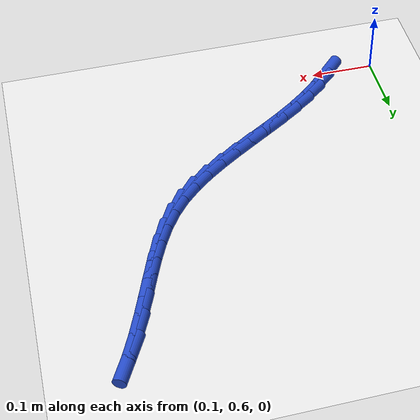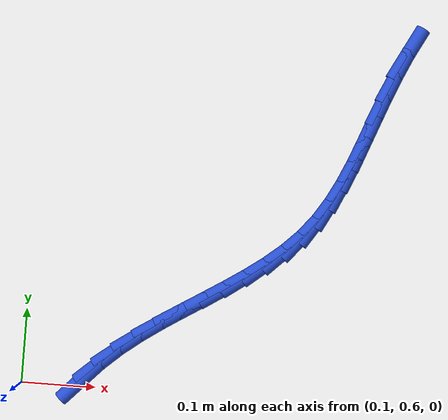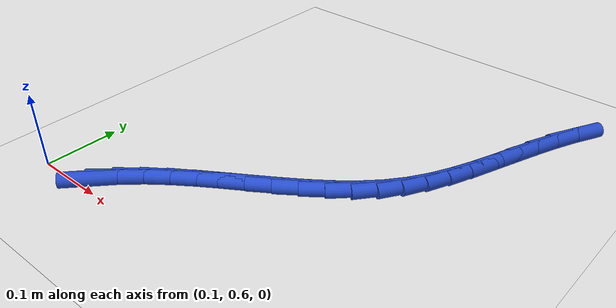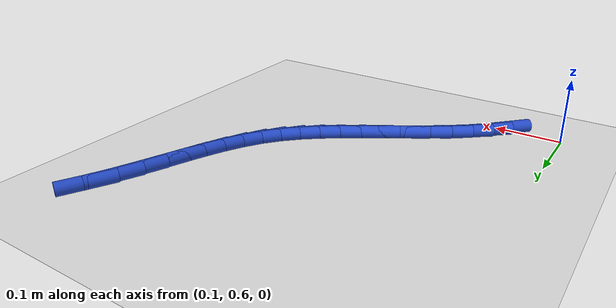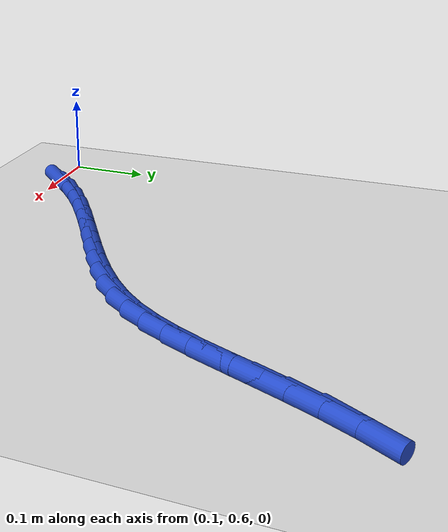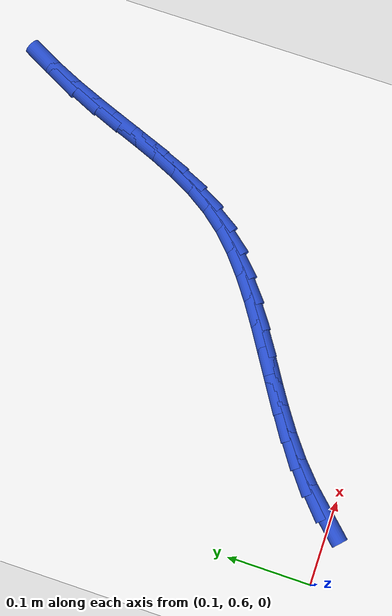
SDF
<sdf version="1.6">
 <world name="default">
  <model name="ground_plane">
   <static>1</static>
   <link name="link">
    <collision name="collision">
     <geometry><plane><normal>0 0 1</normal><size>100 100</size></plane></geometry>
     <surface><friction><ode><mu>100</mu><mu2>50</mu2></ode></friction></surface>
    </collision>
    <visual name="visual">
     <cast_shadows>0</cast_shadows>
     <geometry><plane><normal>0 0 1</normal><size>100 100</size></plane></geometry>
     <material>
      <script><uri>file://media/materials/scripts/gazebo.material</uri><name>Gazebo/WhiteGlow</name></script>
     </material>
    </visual>
   </link>
  </model>
  <model name="line">
   <link name="link_20">
    <pose>0.18259330747721997 0.6118370886927432 0.01 0 1.57 0.8105098833051363</pose>
    <collision name="collision">
     <geometry><cylinder><radius>0.01</radius><length>0.08</length></cylinder></geometry>
    </collision>
    <visual name="visual">
     <material>
      <script><name>Gazebo/Blue</name><uri>file://media/materials/scripts/gazebo.material</uri></script>
     </material>
     <geometry><cylinder><radius>0.01</radius><length>0.08</length></cylinder></geometry>
    </visual>
   </link>
   <link name="link_21">
    <pose>0.20458417969015824 0.6349611117162631 0.01 0 1.57 0.7293195431601147</pose>
    <collision name="collision">
     <geometry><cylinder><radius>0.01</radius><length>0.08</length></cylinder></geometry>
    </collision>
    <visual name="visual">
     <material>
      <script><name>Gazebo/Blue</name><uri>file://media/materials/scripts/gazebo.material</uri></script>
     </material>
     <geometry><cylinder><radius>0.01</radius><length>0.08</length></cylinder></geometry>
    </visual>
   </link>
   <link name="link_22">
    <pose>0.22858693797046195 0.6564122053034579 0.01 0 1.57 0.6570275330989166</pose>
    <collision name="collision">
     <geometry><cylinder><radius>0.01</radius><length>0.08</length></cylinder></geometry>
    </collision>
    <visual name="visual">
     <material>
      <script><name>Gazebo/Blue</name><uri>file://media/materials/scripts/gazebo.material</uri></script>
     </material>
     <geometry><cylinder><radius>0.01</radius><length>0.08</length></cylinder></geometry>
    </visual>
   </link>
   <link name="link_23">
    <pose>0.25439272228096554 0.6763175734729767 0.01 0 1.57 0.6047576606259017</pose>
    <collision name="collision">
     <geometry><cylinder><radius>0.01</radius><length>0.08</length></cylinder></geometry>
    </collision>
    <visual name="visual">
     <material>
      <script><name>Gazebo/Blue</name><uri>file://media/materials/scripts/gazebo.material</uri></script>
     </material>
     <geometry><cylinder><radius>0.01</radius><length>0.08</length></cylinder></geometry>
    </visual>
   </link>
   <link name="link_24">
    <pose>0.2814932727280292 0.6950479595753469 0.01 0 1.57 0.571743557279908</pose>
    <collision name="collision">
     <geometry><cylinder><radius>0.01</radius><length>0.08</length></cylinder></geometry>
    </collision>
    <visual name="visual">
     <material>
      <script><name>Gazebo/Blue</name><uri>file://media/materials/scripts/gazebo.material</uri></script>
     </material>
     <geometry><cylinder><radius>0.01</radius><length>0.08</length></cylinder></geometry>
    </visual>
   </link>
   <link name="link_25">
    <pose>0.3093684856769598 0.7129837409563066 0.01 0 1.57 0.5570754616753605</pose>
    <collision name="collision">
     <geometry><cylinder><radius>0.01</radius><length>0.08</length></cylinder></geometry>
    </collision>
    <visual name="visual">
     <material>
      <script><name>Gazebo/Blue</name><uri>file://media/materials/scripts/gazebo.material</uri></script>
     </material>
     <geometry><cylinder><radius>0.01</radius><length>0.08</length></cylinder></geometry>
    </visual>
   </link>
   <link name="link_26">
    <pose>0.3374982574930642 0.7305052949615926 0.01 0 1.57 0.5604697568227484</pose>
    <collision name="collision">
     <geometry><cylinder><radius>0.01</radius><length>0.08</length></cylinder></geometry>
    </collision>
    <visual name="visual">
     <material>
      <script><name>Gazebo/Blue</name><uri>file://media/materials/scripts/gazebo.material</uri></script>
     </material>
     <geometry><cylinder><radius>0.01</radius><length>0.08</length></cylinder></geometry>
    </visual>
   </link>
   <link name="link_27">
    <pose>0.3653624845416492 0.747992998936943 0.01 0 1.57 0.5824043736246806</pose>
    <collision name="collision">
     <geometry><cylinder><radius>0.01</radius><length>0.08</length></cylinder></geometry>
    </collision>
    <visual name="visual">
     <material>
      <script><name>Gazebo/Blue</name><uri>file://media/materials/scripts/gazebo.material</uri></script>
     </material>
     <geometry><cylinder><radius>0.01</radius><length>0.08</length></cylinder></geometry>
    </visual>
   </link>
   <link name="link_28">
    <pose>0.39244106318802163 0.7658272302280953 0.01 0 1.57 0.6241431647004706</pose>
    <collision name="collision">
     <geometry><cylinder><radius>0.01</radius><length>0.08</length></cylinder></geometry>
    </collision>
    <visual name="visual">
     <material>
      <script><name>Gazebo/Blue</name><uri>file://media/materials/scripts/gazebo.material</uri></script>
     </material>
     <geometry><cylinder><radius>0.01</radius><length>0.08</length></cylinder></geometry>
    </visual>
   </link>
   <link name="link_29">
    <pose>0.41821388979748836 0.784388366180787 0.01 0 1.57 0.6876137003023063</pose>
    <collision name="collision">
     <geometry><cylinder><radius>0.01</radius><length>0.08</length></cylinder></geometry>
    </collision>
    <visual name="visual">
     <material>
      <script><name>Gazebo/Blue</name><uri>file://media/materials/scripts/gazebo.material</uri></script>
     </material>
     <geometry><cylinder><radius>0.01</radius><length>0.08</length></cylinder></geometry>
    </visual>
   </link>
   <link name="link_30">
    <pose>0.4421608607353561 0.8040567841407555 0.01 0 1.57 0.7749924442419578</pose>
    <collision name="collision">
     <geometry><cylinder><radius>0.01</radius><length>0.08</length></cylinder></geometry>
    </collision>
    <visual name="visual">
     <material>
      <script><name>Gazebo/Blue</name><uri>file://media/materials/scripts/gazebo.material</uri></script>
     </material>
     <geometry><cylinder><radius>0.01</radius><length>0.08</length></cylinder></geometry>
    </visual>
   </link>
   <link name="link_31">
    <pose>0.4637618723669319 0.825212861453739 0.01 0 1.57 0.8862611791400495</pose>
    <collision name="collision">
     <geometry><cylinder><radius>0.01</radius><length>0.08</length></cylinder></geometry>
    </collision>
    <visual name="visual">
     <material>
      <script><name>Gazebo/Blue</name><uri>file://media/materials/scripts/gazebo.material</uri></script>
     </material>
     <geometry><cylinder><radius>0.01</radius><length>0.08</length></cylinder></geometry>
    </visual>
   </link>
   <link name="link_32">
    <pose>0.4825365131880799 0.8482156473921896 0.01 0 1.57 0.997169372033342</pose>
    <collision name="collision">
     <geometry><cylinder><radius>0.01</radius><length>0.08</length></cylinder></geometry>
    </collision>
    <visual name="visual">
     <material>
      <script><name>Gazebo/Blue</name><uri>file://media/materials/scripts/gazebo.material</uri></script>
     </material>
     <geometry><cylinder><radius>0.01</radius><length>0.08</length></cylinder></geometry>
    </visual>
   </link>
   <link name="link_33">
    <pose>0.49861254918552556 0.8730973946088532 0.01 0 1.57 1.0859136624049903</pose>
    <collision name="collision">
     <geometry><cylinder><radius>0.01</radius><length>0.08</length></cylinder></geometry>
    </collision>
    <visual name="visual">
     <material>
      <script><name>Gazebo/Blue</name><uri>file://media/materials/scripts/gazebo.material</uri></script>
     </material>
     <geometry><cylinder><radius>0.01</radius><length>0.08</length></cylinder></geometry>
    </visual>
   </link>
   <link name="link_34">
    <pose>0.5125933276794734 0.8996348080347771 0.01 0 1.57 1.1503778075862405</pose>
    <collision name="collision">
     <geometry><cylinder><radius>0.01</radius><length>0.08</length></cylinder></geometry>
    </collision>
    <visual name="visual">
     <material>
      <script><name>Gazebo/Blue</name><uri>file://media/materials/scripts/gazebo.material</uri></script>
     </material>
     <geometry><cylinder><radius>0.01</radius><length>0.08</length></cylinder></geometry>
    </visual>
   </link>
   <link name="link_35">
    <pose>0.525094865084674 0.9275977850204352 0.01 0 1.57 1.19103113966962</pose>
    <collision name="collision">
     <geometry><cylinder><radius>0.01</radius><length>0.08</length></cylinder></geometry>
    </collision>
    <visual name="visual">
     <material>
      <script><name>Gazebo/Blue</name><uri>file://media/materials/scripts/gazebo.material</uri></script>
     </material>
     <geometry><cylinder><radius>0.01</radius><length>0.08</length></cylinder></geometry>
    </visual>
   </link>
   <link name="link_36">
    <pose>0.536733177815878 0.9567562229163009 0.01 0 1.57 1.2092729480799627</pose>
    <collision name="collision">
     <geometry><cylinder><radius>0.01</radius><length>0.08</length></cylinder></geometry>
    </collision>
    <visual name="visual">
     <material>
      <script><name>Gazebo/Blue</name><uri>file://media/materials/scripts/gazebo.material</uri></script>
     </material>
     <geometry><cylinder><radius>0.01</radius><length>0.08</length></cylinder></geometry>
    </visual>
   </link>
   <link name="link_37">
    <pose>0.5481242822878362 0.9868800190728476 0.01 0 1.57 1.2067018214448675</pose>
    <collision name="collision">
     <geometry><cylinder><radius>0.01</radius><length>0.08</length></cylinder></geometry>
    </collision>
    <visual name="visual">
     <material>
      <script><name>Gazebo/Blue</name><uri>file://media/materials/scripts/gazebo.material</uri></script>
     </material>
     <geometry><cylinder><radius>0.01</radius><length>0.08</length></cylinder></geometry>
    </visual>
   </link>
   <link name="link_38">
    <pose>0.5598841949152991 1.0177390708405492 0.01 0 1.57 1.1848307651962147</pose>
    <collision name="collision">
     <geometry><cylinder><radius>0.01</radius><length>0.08</length></cylinder></geometry>
    </collision>
    <visual name="visual">
     <material>
      <script><name>Gazebo/Blue</name><uri>file://media/materials/scripts/gazebo.material</uri></script>
     </material>
     <geometry><cylinder><radius>0.01</radius><length>0.08</length></cylinder></geometry>
    </visual>
   </link>
   <link name="link_39">
    <pose>0.5726289321130176 1.0491032755698797 0.01 0 1.57 1.1451096459567947</pose>
    <collision name="collision">
     <geometry><cylinder><radius>0.01</radius><length>0.08</length></cylinder></geometry>
    </collision>
    <visual name="visual">
     <material>
      <script><name>Gazebo/Blue</name><uri>file://media/materials/scripts/gazebo.material</uri></script>
     </material>
     <geometry><cylinder><radius>0.01</radius><length>0.08</length></cylinder></geometry>
    </visual>
   </link>
   <link name="link_40">
    <pose>0.5869745102957421 1.0807425306113123 0.01 0 1.57 1.0891271212510463</pose>
    <collision name="collision">
     <geometry><cylinder><radius>0.01</radius><length>0.08</length></cylinder></geometry>
    </collision>
    <visual name="visual">
     <material>
      <script><name>Gazebo/Blue</name><uri>file://media/materials/scripts/gazebo.material</uri></script>
     </material>
     <geometry><cylinder><radius>0.01</radius><length>0.08</length></cylinder></geometry>
    </visual>
   </link>
  </model>
 </world>
</sdf>
